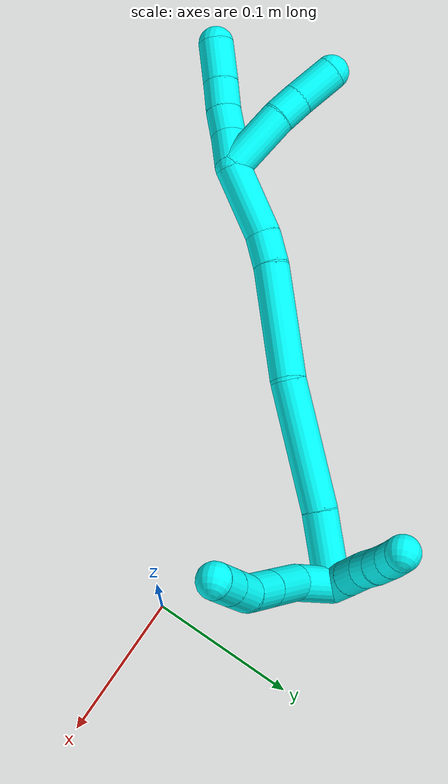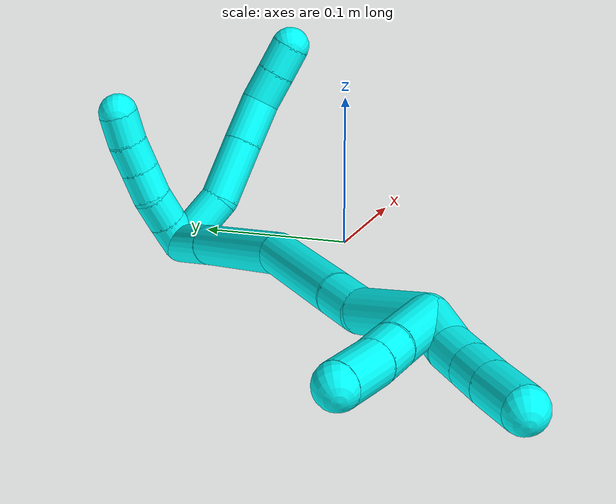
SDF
<sdf version="1.7">
 <world name="default">
  <model name="3">
   <static>0</static>
   <link name="3">
    <collision name="collision-cylinder-e_1_2_8">
     <pose>-0.003177 -0.016571 0.008357 1.10369 -0.169563 -0.104547</pose>
     <geometry><cylinder><radius>0.0125</radius><length>0.037658</length></cylinder></geometry>
     <surface>
      <friction><ode><mu>1.16</mu><mu2>1.16</mu2><slip1>0</slip1><slip2>0</slip2></ode></friction>
      <contact><ode><kp>1e+06</kp><kd>1</kd><max_vel>0</max_vel><min_depth>0.001</min_depth></ode></contact>
     </surface>
    </collision>
    <visual name="visual-cylinder-e_1_2_8">
     <pose>-0.003177 -0.016571 0.008357 1.10369 -0.169563 -0.104547</pose>
     <geometry><cylinder><radius>0.0125</radius><length>0.037658</length></cylinder></geometry>
     <material><ambient>0.003922 1 0.996078 1</ambient></material>
    </visual>
    <collision name="collision-cylinder-e_2_8_9">
     <pose>-0.014237 -0.047386 0.028766 0.86859 -0.399707 -0.187354</pose>
     <geometry><cylinder><radius>0.0125</radius><length>0.040511</length></cylinder></geometry>
     <surface>
      <friction><ode><mu>1.16</mu><mu2>1.16</mu2><slip1>0</slip1><slip2>0</slip2></ode></friction>
      <contact><ode><kp>1e+06</kp><kd>1</kd><max_vel>0</max_vel><min_depth>0.001</min_depth></ode></contact>
     </surface>
    </collision>
    <visual name="visual-cylinder-e_2_8_9">
     <pose>-0.014237 -0.047386 0.028766 0.86859 -0.399707 -0.187354</pose>
     <geometry><cylinder><radius>0.0125</radius><length>0.040511</length></cylinder></geometry>
     <material><ambient>0.003922 1 0.996078 1</ambient></material>
    </visual>
    <collision name="collision-cylinder-e_3_9_10">
     <pose>-0.027793 -0.072215 0.049713 0.871901 -0.389376 -0.183201</pose>
     <geometry><cylinder><radius>0.0125</radius><length>0.029888</length></cylinder></geometry>
     <surface>
      <friction><ode><mu>1.16</mu><mu2>1.16</mu2><slip1>0</slip1><slip2>0</slip2></ode></friction>
      <contact><ode><kp>1e+06</kp><kd>1</kd><max_vel>0</max_vel><min_depth>0.001</min_depth></ode></contact>
     </surface>
    </collision>
    <visual name="visual-cylinder-e_3_9_10">
     <pose>-0.027793 -0.072215 0.049713 0.871901 -0.389376 -0.183201</pose>
     <geometry><cylinder><radius>0.0125</radius><length>0.029888</length></cylinder></geometry>
     <material><ambient>0.003922 1 0.996078 1</ambient></material>
    </visual>
    <collision name="collision-cylinder-e_4_10_11">
     <pose>-0.038171 -0.091916 0.062212 1.19436 -0.447522 -0.307066</pose>
     <geometry><cylinder><radius>0.0125</radius><length>0.021749</length></cylinder></geometry>
     <surface>
      <friction><ode><mu>1.16</mu><mu2>1.16</mu2><slip1>0</slip1><slip2>0</slip2></ode></friction>
      <contact><ode><kp>1e+06</kp><kd>1</kd><max_vel>0</max_vel><min_depth>0.001</min_depth></ode></contact>
     </surface>
    </collision>
    <visual name="visual-cylinder-e_4_10_11">
     <pose>-0.038171 -0.091916 0.062212 1.19436 -0.447522 -0.307066</pose>
     <geometry><cylinder><radius>0.0125</radius><length>0.021749</length></cylinder></geometry>
     <material><ambient>0.003922 1 0.996078 1</ambient></material>
    </visual>
    <collision name="collision-cylinder-e_5_11_6">
     <pose>-0.047333 -0.109445 0.069184 1.18986 -0.457034 -0.31222</pose>
     <geometry><cylinder><radius>0.0125</radius><length>0.020193</length></cylinder></geometry>
     <surface>
      <friction><ode><mu>1.16</mu><mu2>1.16</mu2><slip1>0</slip1><slip2>0</slip2></ode></friction>
      <contact><ode><kp>1e+06</kp><kd>1</kd><max_vel>0</max_vel><min_depth>0.001</min_depth></ode></contact>
     </surface>
    </collision>
    <visual name="visual-cylinder-e_5_11_6">
     <pose>-0.047333 -0.109445 0.069184 1.18986 -0.457034 -0.31222</pose>
     <geometry><cylinder><radius>0.0125</radius><length>0.020193</length></cylinder></geometry>
     <material><ambient>0.003922 1 0.996078 1</ambient></material>
    </visual>
    <collision name="collision-cylinder-e_1_2_12">
     <pose>-0.009963 -0.000508 0.000693 0.632947 -1.4848 -0.583761</pose>
     <geometry><cylinder><radius>0.0125</radius><length>0.02</length></cylinder></geometry>
     <surface>
      <friction><ode><mu>1.16</mu><mu2>1.16</mu2><slip1>0</slip1><slip2>0</slip2></ode></friction>
      <contact><ode><kp>1e+06</kp><kd>1</kd><max_vel>0</max_vel><min_depth>0.001</min_depth></ode></contact>
     </surface>
    </collision>
    <visual name="visual-cylinder-e_1_2_12">
     <pose>-0.009963 -0.000508 0.000693 0.632947 -1.4848 -0.583761</pose>
     <geometry><cylinder><radius>0.0125</radius><length>0.02</length></cylinder></geometry>
     <material><ambient>0.003922 1 0.996078 1</ambient></material>
    </visual>
    <collision name="collision-cylinder-e_2_12_13">
     <pose>-0.029871 -0.001778 0.0021 0.817145 -1.46606 -0.743385</pose>
     <geometry><cylinder><radius>0.0125</radius><length>0.02</length></cylinder></geometry>
     <surface>
      <friction><ode><mu>1.16</mu><mu2>1.16</mu2><slip1>0</slip1><slip2>0</slip2></ode></friction>
      <contact><ode><kp>1e+06</kp><kd>1</kd><max_vel>0</max_vel><min_depth>0.001</min_depth></ode></contact>
     </surface>
    </collision>
    <visual name="visual-cylinder-e_2_12_13">
     <pose>-0.029871 -0.001778 0.0021 0.817145 -1.46606 -0.743385</pose>
     <geometry><cylinder><radius>0.0125</radius><length>0.02</length></cylinder></geometry>
     <material><ambient>0.003922 1 0.996078 1</ambient></material>
    </visual>
    <collision name="collision-cylinder-e_3_13_14">
     <pose>-0.049356 -0.004073 0.005395 0.536238 -1.26611 -0.397868</pose>
     <geometry><cylinder><radius>0.0125</radius><length>0.02</length></cylinder></geometry>
     <surface>
      <friction><ode><mu>1.16</mu><mu2>1.16</mu2><slip1>0</slip1><slip2>0</slip2></ode></friction>
      <contact><ode><kp>1e+06</kp><kd>1</kd><max_vel>0</max_vel><min_depth>0.001</min_depth></ode></contact>
     </surface>
    </collision>
    <visual name="visual-cylinder-e_3_13_14">
     <pose>-0.049356 -0.004073 0.005395 0.536238 -1.26611 -0.397868</pose>
     <geometry><cylinder><radius>0.0125</radius><length>0.02</length></cylinder></geometry>
     <material><ambient>0.003922 1 0.996078 1</ambient></material>
    </visual>
    <collision name="collision-cylinder-e_4_14_15">
     <pose>-0.068567 -0.007346 0.009826 0.754039 -1.31381 -0.59271</pose>
     <geometry><cylinder><radius>0.0125</radius><length>0.02</length></cylinder></geometry>
     <surface>
      <friction><ode><mu>1.16</mu><mu2>1.16</mu2><slip1>0</slip1><slip2>0</slip2></ode></friction>
      <contact><ode><kp>1e+06</kp><kd>1</kd><max_vel>0</max_vel><min_depth>0.001</min_depth></ode></contact>
     </surface>
    </collision>
    <visual name="visual-cylinder-e_4_14_15">
     <pose>-0.068567 -0.007346 0.009826 0.754039 -1.31381 -0.59271</pose>
     <geometry><cylinder><radius>0.0125</radius><length>0.02</length></cylinder></geometry>
     <material><ambient>0.003922 1 0.996078 1</ambient></material>
    </visual>
    <collision name="collision-cylinder-e_5_15_5">
     <pose>-0.087614 -0.01182 0.013829 0.904514 -1.2156 -0.651843</pose>
     <geometry><cylinder><radius>0.0125</radius><length>0.02</length></cylinder></geometry>
     <surface>
      <friction><ode><mu>1.16</mu><mu2>1.16</mu2><slip1>0</slip1><slip2>0</slip2></ode></friction>
      <contact><ode><kp>1e+06</kp><kd>1</kd><max_vel>0</max_vel><min_depth>0.001</min_depth></ode></contact>
     </surface>
    </collision>
    <visual name="visual-cylinder-e_5_15_5">
     <pose>-0.087614 -0.01182 0.013829 0.904514 -1.2156 -0.651843</pose>
     <geometry><cylinder><radius>0.0125</radius><length>0.02</length></cylinder></geometry>
     <material><ambient>0.003922 1 0.996078 1</ambient></material>
    </visual>
    <collision name="collision-cylinder-e_1_2_16">
     <pose>-0.006104 -0.014777 -0.01978 2.49996 -0.242375 -0.702586</pose>
     <geometry><cylinder><radius>0.0125</radius><length>0.050867</length></cylinder></geometry>
     <surface>
      <friction><ode><mu>1.16</mu><mu2>1.16</mu2><slip1>0</slip1><slip2>0</slip2></ode></friction>
      <contact><ode><kp>1e+06</kp><kd>1</kd><max_vel>0</max_vel><min_depth>0.001</min_depth></ode></contact>
     </surface>
    </collision>
    <visual name="visual-cylinder-e_1_2_16">
     <pose>-0.006104 -0.014777 -0.01978 2.49996 -0.242375 -0.702586</pose>
     <geometry><cylinder><radius>0.0125</radius><length>0.050867</length></cylinder></geometry>
     <material><ambient>0.003922 1 0.996078 1</ambient></material>
    </visual>
    <collision name="collision-cylinder-e_2_16_17">
     <pose>-0.020007 -0.057528 -0.074441 2.46565 -0.172676 -0.482934</pose>
     <geometry><cylinder><radius>0.0125</radius><length>0.090775</length></cylinder></geometry>
     <surface>
      <friction><ode><mu>1.16</mu><mu2>1.16</mu2><slip1>0</slip1><slip2>0</slip2></ode></friction>
      <contact><ode><kp>1e+06</kp><kd>1</kd><max_vel>0</max_vel><min_depth>0.001</min_depth></ode></contact>
     </surface>
    </collision>
    <visual name="visual-cylinder-e_2_16_17">
     <pose>-0.020007 -0.057528 -0.074441 2.46565 -0.172676 -0.482934</pose>
     <geometry><cylinder><radius>0.0125</radius><length>0.090775</length></cylinder></geometry>
     <material><ambient>0.003922 1 0.996078 1</ambient></material>
    </visual>
    <collision name="collision-cylinder-e_3_17_18">
     <pose>-0.030735 -0.103927 -0.145714 2.67291 -0.071706 -0.298261</pose>
     <geometry><cylinder><radius>0.0125</radius><length>0.081791</length></cylinder></geometry>
     <surface>
      <friction><ode><mu>1.16</mu><mu2>1.16</mu2><slip1>0</slip1><slip2>0</slip2></ode></friction>
      <contact><ode><kp>1e+06</kp><kd>1</kd><max_vel>0</max_vel><min_depth>0.001</min_depth></ode></contact>
     </surface>
    </collision>
    <visual name="visual-cylinder-e_3_17_18">
     <pose>-0.030735 -0.103927 -0.145714 2.67291 -0.071706 -0.298261</pose>
     <geometry><cylinder><radius>0.0125</radius><length>0.081791</length></cylinder></geometry>
     <material><ambient>0.003922 1 0.996078 1</ambient></material>
    </visual>
    <collision name="collision-cylinder-e_4_18_19">
     <pose>-0.03304 -0.128282 -0.192891 2.63896 0.050804 0.197274</pose>
     <geometry><cylinder><radius>0.0125</radius><length>0.024647</length></cylinder></geometry>
     <surface>
      <friction><ode><mu>1.16</mu><mu2>1.16</mu2><slip1>0</slip1><slip2>0</slip2></ode></friction>
      <contact><ode><kp>1e+06</kp><kd>1</kd><max_vel>0</max_vel><min_depth>0.001</min_depth></ode></contact>
     </surface>
    </collision>
    <visual name="visual-cylinder-e_4_18_19">
     <pose>-0.03304 -0.128282 -0.192891 2.63896 0.050804 0.197274</pose>
     <geometry><cylinder><radius>0.0125</radius><length>0.024647</length></cylinder></geometry>
     <material><ambient>0.003922 1 0.996078 1</ambient></material>
    </visual>
    <collision name="collision-cylinder-e_5_19_1">
     <pose>-0.033967 -0.153109 -0.221406 2.32431 -0.059858 -0.138055</pose>
     <geometry><cylinder><radius>0.0125</radius><length>0.051919</length></cylinder></geometry>
     <surface>
      <friction><ode><mu>1.16</mu><mu2>1.16</mu2><slip1>0</slip1><slip2>0</slip2></ode></friction>
      <contact><ode><kp>1e+06</kp><kd>1</kd><max_vel>0</max_vel><min_depth>0.001</min_depth></ode></contact>
     </surface>
    </collision>
    <visual name="visual-cylinder-e_5_19_1">
     <pose>-0.033967 -0.153109 -0.221406 2.32431 -0.059858 -0.138055</pose>
     <geometry><cylinder><radius>0.0125</radius><length>0.051919</length></cylinder></geometry>
     <material><ambient>0.003922 1 0.996078 1</ambient></material>
    </visual>
    <collision name="collision-cylinder-e_1_1_20">
     <pose>-0.033467 -0.175482 -0.251536 2.86841 0.158104 1.04568</pose>
     <geometry><cylinder><radius>0.0125</radius><length>0.026079</length></cylinder></geometry>
     <surface>
      <friction><ode><mu>1.16</mu><mu2>1.16</mu2><slip1>0</slip1><slip2>0</slip2></ode></friction>
      <contact><ode><kp>1e+06</kp><kd>1</kd><max_vel>0</max_vel><min_depth>0.001</min_depth></ode></contact>
     </surface>
    </collision>
    <visual name="visual-cylinder-e_1_1_20">
     <pose>-0.033467 -0.175482 -0.251536 2.86841 0.158104 1.04568</pose>
     <geometry><cylinder><radius>0.0125</radius><length>0.026079</length></cylinder></geometry>
     <material><ambient>0.003922 1 0.996078 1</ambient></material>
    </visual>
    <collision name="collision-cylinder-e_2_20_21">
     <pose>-0.030851 -0.183241 -0.273475 2.71944 0.053713 0.249441</pose>
     <geometry><cylinder><radius>0.0125</radius><length>0.020946</length></cylinder></geometry>
     <surface>
      <friction><ode><mu>1.16</mu><mu2>1.16</mu2><slip1>0</slip1><slip2>0</slip2></ode></friction>
      <contact><ode><kp>1e+06</kp><kd>1</kd><max_vel>0</max_vel><min_depth>0.001</min_depth></ode></contact>
     </surface>
    </collision>
    <visual name="visual-cylinder-e_2_20_21">
     <pose>-0.030851 -0.183241 -0.273475 2.71944 0.053713 0.249441</pose>
     <geometry><cylinder><radius>0.0125</radius><length>0.020946</length></cylinder></geometry>
     <material><ambient>0.003922 1 0.996078 1</ambient></material>
    </visual>
    <collision name="collision-cylinder-e_3_21_22">
     <pose>-0.030861 -0.191824 -0.293132 2.73985 -0.051991 -0.254018</pose>
     <geometry><cylinder><radius>0.0125</radius><length>0.022015</length></cylinder></geometry>
     <surface>
      <friction><ode><mu>1.16</mu><mu2>1.16</mu2><slip1>0</slip1><slip2>0</slip2></ode></friction>
      <contact><ode><kp>1e+06</kp><kd>1</kd><max_vel>0</max_vel><min_depth>0.001</min_depth></ode></contact>
     </surface>
    </collision>
    <visual name="visual-cylinder-e_3_21_22">
     <pose>-0.030861 -0.191824 -0.293132 2.73985 -0.051991 -0.254018</pose>
     <geometry><cylinder><radius>0.0125</radius><length>0.022015</length></cylinder></geometry>
     <material><ambient>0.003922 1 0.996078 1</ambient></material>
    </visual>
    <collision name="collision-cylinder-e_4_22_4">
     <pose>-0.032368 -0.202589 -0.317283 2.70979 -0.060452 -0.273991</pose>
     <geometry><cylinder><radius>0.0125</radius><length>0.030959</length></cylinder></geometry>
     <surface>
      <friction><ode><mu>1.16</mu><mu2>1.16</mu2><slip1>0</slip1><slip2>0</slip2></ode></friction>
      <contact><ode><kp>1e+06</kp><kd>1</kd><max_vel>0</max_vel><min_depth>0.001</min_depth></ode></contact>
     </surface>
    </collision>
    <visual name="visual-cylinder-e_4_22_4">
     <pose>-0.032368 -0.202589 -0.317283 2.70979 -0.060452 -0.273991</pose>
     <geometry><cylinder><radius>0.0125</radius><length>0.030959</length></cylinder></geometry>
     <material><ambient>0.003922 1 0.996078 1</ambient></material>
    </visual>
    <collision name="collision-cylinder-e_1_1_23">
     <pose>-0.047398 -0.16589 -0.259159 -2.84507 -0.516071 2.11162</pose>
     <geometry><cylinder><radius>0.0125</radius><length>0.048144</length></cylinder></geometry>
     <surface>
      <friction><ode><mu>1.16</mu><mu2>1.16</mu2><slip1>0</slip1><slip2>0</slip2></ode></friction>
      <contact><ode><kp>1e+06</kp><kd>1</kd><max_vel>0</max_vel><min_depth>0.001</min_depth></ode></contact>
     </surface>
    </collision>
    <visual name="visual-cylinder-e_1_1_23">
     <pose>-0.047398 -0.16589 -0.259159 -2.84507 -0.516071 2.11162</pose>
     <geometry><cylinder><radius>0.0125</radius><length>0.048144</length></cylinder></geometry>
     <material><ambient>0.003922 1 0.996078 1</ambient></material>
    </visual>
    <collision name="collision-cylinder-e_2_23_24">
     <pose>-0.063731 -0.156149 -0.287469 -2.72943 -0.457648 1.67865</pose>
     <geometry><cylinder><radius>0.0125</radius><length>0.020162</length></cylinder></geometry>
     <surface>
      <friction><ode><mu>1.16</mu><mu2>1.16</mu2><slip1>0</slip1><slip2>0</slip2></ode></friction>
      <contact><ode><kp>1e+06</kp><kd>1</kd><max_vel>0</max_vel><min_depth>0.001</min_depth></ode></contact>
     </surface>
    </collision>
    <visual name="visual-cylinder-e_2_23_24">
     <pose>-0.063731 -0.156149 -0.287469 -2.72943 -0.457648 1.67865</pose>
     <geometry><cylinder><radius>0.0125</radius><length>0.020162</length></cylinder></geometry>
     <material><ambient>0.003922 1 0.996078 1</ambient></material>
    </visual>
    <collision name="collision-cylinder-e_3_24_3">
     <pose>-0.076172 -0.146559 -0.308073 -2.69045 -0.528206 1.73423</pose>
     <geometry><cylinder><radius>0.0125</radius><length>0.031693</length></cylinder></geometry>
     <surface>
      <friction><ode><mu>1.16</mu><mu2>1.16</mu2><slip1>0</slip1><slip2>0</slip2></ode></friction>
      <contact><ode><kp>1e+06</kp><kd>1</kd><max_vel>0</max_vel><min_depth>0.001</min_depth></ode></contact>
     </surface>
    </collision>
    <visual name="visual-cylinder-e_3_24_3">
     <pose>-0.076172 -0.146559 -0.308073 -2.69045 -0.528206 1.73423</pose>
     <geometry><cylinder><radius>0.0125</radius><length>0.031693</length></cylinder></geometry>
     <material><ambient>0.003922 1 0.996078 1</ambient></material>
    </visual>
    <collision name="collision-sphere-3">
     <pose>-0.084159 -0.140591 -0.320391 0 -0 0</pose>
     <geometry><sphere><radius>0.0125</radius></sphere></geometry>
     <surface>
      <friction><ode><mu>1.16</mu><mu2>1.16</mu2><slip1>0</slip1><slip2>0</slip2></ode></friction>
      <contact><ode><kp>1e+06</kp><kd>1</kd><max_vel>0</max_vel><min_depth>0.001</min_depth></ode></contact>
     </surface>
    </collision>
    <visual name="visual-sphere-3">
     <pose>-0.084159 -0.140591 -0.320391 0 -0 0</pose>
     <geometry><sphere><radius>0.0125</radius></sphere></geometry>
     <material><ambient>0.003922 1 0.996078 1</ambient></material>
    </visual>
    <collision name="collision-sphere-24">
     <pose>-0.068186 -0.152526 -0.295756 0 -0 0</pose>
     <geometry><sphere><radius>0.0125</radius></sphere></geometry>
     <surface>
      <friction><ode><mu>1.16</mu><mu2>1.16</mu2><slip1>0</slip1><slip2>0</slip2></ode></friction>
      <contact><ode><kp>1e+06</kp><kd>1</kd><max_vel>0</max_vel><min_depth>0.001</min_depth></ode></contact>
     </surface>
    </collision>
    <visual name="visual-sphere-24">
     <pose>-0.068186 -0.152526 -0.295756 0 -0 0</pose>
     <geometry><sphere><radius>0.0125</radius></sphere></geometry>
     <material><ambient>0.003922 1 0.996078 1</ambient></material>
    </visual>
    <collision name="collision-sphere-23">
     <pose>-0.059277 -0.159772 -0.279183 0 -0 0</pose>
     <geometry><sphere><radius>0.0125</radius></sphere></geometry>
     <surface>
      <friction><ode><mu>1.16</mu><mu2>1.16</mu2><slip1>0</slip1><slip2>0</slip2></ode></friction>
      <contact><ode><kp>1e+06</kp><kd>1</kd><max_vel>0</max_vel><min_depth>0.001</min_depth></ode></contact>
     </surface>
    </collision>
    <visual name="visual-sphere-23">
     <pose>-0.059277 -0.159772 -0.279183 0 -0 0</pose>
     <geometry><sphere><radius>0.0125</radius></sphere></geometry>
     <material><ambient>0.003922 1 0.996078 1</ambient></material>
    </visual>
    <collision name="collision-sphere-4">
     <pose>-0.033304 -0.209056 -0.331316 0 -0 0</pose>
     <geometry><sphere><radius>0.0125</radius></sphere></geometry>
     <surface>
      <friction><ode><mu>1.16</mu><mu2>1.16</mu2><slip1>0</slip1><slip2>0</slip2></ode></friction>
      <contact><ode><kp>1e+06</kp><kd>1</kd><max_vel>0</max_vel><min_depth>0.001</min_depth></ode></contact>
     </surface>
    </collision>
    <visual name="visual-sphere-4">
     <pose>-0.033304 -0.209056 -0.331316 0 -0 0</pose>
     <geometry><sphere><radius>0.0125</radius></sphere></geometry>
     <material><ambient>0.003922 1 0.996078 1</ambient></material>
    </visual>
    <collision name="collision-sphere-22">
     <pose>-0.031433 -0.196122 -0.30325 0 -0 0</pose>
     <geometry><sphere><radius>0.0125</radius></sphere></geometry>
     <surface>
      <friction><ode><mu>1.16</mu><mu2>1.16</mu2><slip1>0</slip1><slip2>0</slip2></ode></friction>
      <contact><ode><kp>1e+06</kp><kd>1</kd><max_vel>0</max_vel><min_depth>0.001</min_depth></ode></contact>
     </surface>
    </collision>
    <visual name="visual-sphere-22">
     <pose>-0.031433 -0.196122 -0.30325 0 -0 0</pose>
     <geometry><sphere><radius>0.0125</radius></sphere></geometry>
     <material><ambient>0.003922 1 0.996078 1</ambient></material>
    </visual>
    <collision name="collision-sphere-21">
     <pose>-0.030289 -0.187526 -0.283015 0 -0 0</pose>
     <geometry><sphere><radius>0.0125</radius></sphere></geometry>
     <surface>
      <friction><ode><mu>1.16</mu><mu2>1.16</mu2><slip1>0</slip1><slip2>0</slip2></ode></friction>
      <contact><ode><kp>1e+06</kp><kd>1</kd><max_vel>0</max_vel><min_depth>0.001</min_depth></ode></contact>
     </surface>
    </collision>
    <visual name="visual-sphere-21">
     <pose>-0.030289 -0.187526 -0.283015 0 -0 0</pose>
     <geometry><sphere><radius>0.0125</radius></sphere></geometry>
     <material><ambient>0.003922 1 0.996078 1</ambient></material>
    </visual>
    <collision name="collision-sphere-20">
     <pose>-0.031414 -0.178956 -0.263935 0 -0 0</pose>
     <geometry><sphere><radius>0.0125</radius></sphere></geometry>
     <surface>
      <friction><ode><mu>1.16</mu><mu2>1.16</mu2><slip1>0</slip1><slip2>0</slip2></ode></friction>
      <contact><ode><kp>1e+06</kp><kd>1</kd><max_vel>0</max_vel><min_depth>0.001</min_depth></ode></contact>
     </surface>
    </collision>
    <visual name="visual-sphere-20">
     <pose>-0.031414 -0.178956 -0.263935 0 -0 0</pose>
     <geometry><sphere><radius>0.0125</radius></sphere></geometry>
     <material><ambient>0.003922 1 0.996078 1</ambient></material>
    </visual>
    <collision name="collision-sphere-6">
     <pose>-0.051788 -0.117856 0.072553 0 -0 0</pose>
     <geometry><sphere><radius>0.0125</radius></sphere></geometry>
     <surface>
      <friction><ode><mu>1.16</mu><mu2>1.16</mu2><slip1>0</slip1><slip2>0</slip2></ode></friction>
      <contact><ode><kp>1e+06</kp><kd>1</kd><max_vel>0</max_vel><min_depth>0.001</min_depth></ode></contact>
     </surface>
    </collision>
    <visual name="visual-sphere-6">
     <pose>-0.051788 -0.117856 0.072553 0 -0 0</pose>
     <geometry><sphere><radius>0.0125</radius></sphere></geometry>
     <material><ambient>0.003922 1 0.996078 1</ambient></material>
    </visual>
    <collision name="collision-sphere-11">
     <pose>-0.042877 -0.101034 0.065816 0 -0 0</pose>
     <geometry><sphere><radius>0.0125</radius></sphere></geometry>
     <surface>
      <friction><ode><mu>1.16</mu><mu2>1.16</mu2><slip1>0</slip1><slip2>0</slip2></ode></friction>
      <contact><ode><kp>1e+06</kp><kd>1</kd><max_vel>0</max_vel><min_depth>0.001</min_depth></ode></contact>
     </surface>
    </collision>
    <visual name="visual-sphere-11">
     <pose>-0.042877 -0.101034 0.065816 0 -0 0</pose>
     <geometry><sphere><radius>0.0125</radius></sphere></geometry>
     <material><ambient>0.003922 1 0.996078 1</ambient></material>
    </visual>
    <collision name="collision-sphere-10">
     <pose>-0.033466 -0.082799 0.058608 0 -0 0</pose>
     <geometry><sphere><radius>0.0125</radius></sphere></geometry>
     <surface>
      <friction><ode><mu>1.16</mu><mu2>1.16</mu2><slip1>0</slip1><slip2>0</slip2></ode></friction>
      <contact><ode><kp>1e+06</kp><kd>1</kd><max_vel>0</max_vel><min_depth>0.001</min_depth></ode></contact>
     </surface>
    </collision>
    <visual name="visual-sphere-10">
     <pose>-0.033466 -0.082799 0.058608 0 -0 0</pose>
     <geometry><sphere><radius>0.0125</radius></sphere></geometry>
     <material><ambient>0.003922 1 0.996078 1</ambient></material>
    </visual>
    <collision name="collision-sphere-9">
     <pose>-0.02212 -0.061631 0.040818 0 -0 0</pose>
     <geometry><sphere><radius>0.0125</radius></sphere></geometry>
     <surface>
      <friction><ode><mu>1.16</mu><mu2>1.16</mu2><slip1>0</slip1><slip2>0</slip2></ode></friction>
      <contact><ode><kp>1e+06</kp><kd>1</kd><max_vel>0</max_vel><min_depth>0.001</min_depth></ode></contact>
     </surface>
    </collision>
    <visual name="visual-sphere-9">
     <pose>-0.02212 -0.061631 0.040818 0 -0 0</pose>
     <geometry><sphere><radius>0.0125</radius></sphere></geometry>
     <material><ambient>0.003922 1 0.996078 1</ambient></material>
    </visual>
    <collision name="collision-sphere-2">
     <geometry><sphere><radius>0.0125</radius></sphere></geometry>
     <surface>
      <friction><ode><mu>1.16</mu><mu2>1.16</mu2><slip1>0</slip1><slip2>0</slip2></ode></friction>
      <contact><ode><kp>1e+06</kp><kd>1</kd><max_vel>0</max_vel><min_depth>0.001</min_depth></ode></contact>
     </surface>
    </collision>
    <visual name="visual-sphere-2">
     <geometry><sphere><radius>0.0125</radius></sphere></geometry>
     <material><ambient>0.003922 1 0.996078 1</ambient></material>
    </visual>
    <collision name="collision-sphere-19">
     <pose>-0.032414 -0.134211 -0.203676 0 -0 0</pose>
     <geometry><sphere><radius>0.0125</radius></sphere></geometry>
     <surface>
      <friction><ode><mu>1.16</mu><mu2>1.16</mu2><slip1>0</slip1><slip2>0</slip2></ode></friction>
      <contact><ode><kp>1e+06</kp><kd>1</kd><max_vel>0</max_vel><min_depth>0.001</min_depth></ode></contact>
     </surface>
    </collision>
    <visual name="visual-sphere-19">
     <pose>-0.032414 -0.134211 -0.203676 0 -0 0</pose>
     <geometry><sphere><radius>0.0125</radius></sphere></geometry>
     <material><ambient>0.003922 1 0.996078 1</ambient></material>
    </visual>
    <collision name="collision-sphere-8">
     <pose>-0.006355 -0.033141 0.016714 0 -0 0</pose>
     <geometry><sphere><radius>0.0125</radius></sphere></geometry>
     <surface>
      <friction><ode><mu>1.16</mu><mu2>1.16</mu2><slip1>0</slip1><slip2>0</slip2></ode></friction>
      <contact><ode><kp>1e+06</kp><kd>1</kd><max_vel>0</max_vel><min_depth>0.001</min_depth></ode></contact>
     </surface>
    </collision>
    <visual name="visual-sphere-8">
     <pose>-0.006355 -0.033141 0.016714 0 -0 0</pose>
     <geometry><sphere><radius>0.0125</radius></sphere></geometry>
     <material><ambient>0.003922 1 0.996078 1</ambient></material>
    </visual>
    <collision name="collision-sphere-12">
     <pose>-0.019926 -0.001016 0.001385 0 -0 0</pose>
     <geometry><sphere><radius>0.0125</radius></sphere></geometry>
     <surface>
      <friction><ode><mu>1.16</mu><mu2>1.16</mu2><slip1>0</slip1><slip2>0</slip2></ode></friction>
      <contact><ode><kp>1e+06</kp><kd>1</kd><max_vel>0</max_vel><min_depth>0.001</min_depth></ode></contact>
     </surface>
    </collision>
    <visual name="visual-sphere-12">
     <pose>-0.019926 -0.001016 0.001385 0 -0 0</pose>
     <geometry><sphere><radius>0.0125</radius></sphere></geometry>
     <material><ambient>0.003922 1 0.996078 1</ambient></material>
    </visual>
    <collision name="collision-sphere-13">
     <pose>-0.039816 -0.002541 0.002816 0 -0 0</pose>
     <geometry><sphere><radius>0.0125</radius></sphere></geometry>
     <surface>
      <friction><ode><mu>1.16</mu><mu2>1.16</mu2><slip1>0</slip1><slip2>0</slip2></ode></friction>
      <contact><ode><kp>1e+06</kp><kd>1</kd><max_vel>0</max_vel><min_depth>0.001</min_depth></ode></contact>
     </surface>
    </collision>
    <visual name="visual-sphere-13">
     <pose>-0.039816 -0.002541 0.002816 0 -0 0</pose>
     <geometry><sphere><radius>0.0125</radius></sphere></geometry>
     <material><ambient>0.003922 1 0.996078 1</ambient></material>
    </visual>
    <collision name="collision-sphere-14">
     <pose>-0.058895 -0.005606 0.007974 0 -0 0</pose>
     <geometry><sphere><radius>0.0125</radius></sphere></geometry>
     <surface>
      <friction><ode><mu>1.16</mu><mu2>1.16</mu2><slip1>0</slip1><slip2>0</slip2></ode></friction>
      <contact><ode><kp>1e+06</kp><kd>1</kd><max_vel>0</max_vel><min_depth>0.001</min_depth></ode></contact>
     </surface>
    </collision>
    <visual name="visual-sphere-14">
     <pose>-0.058895 -0.005606 0.007974 0 -0 0</pose>
     <geometry><sphere><radius>0.0125</radius></sphere></geometry>
     <material><ambient>0.003922 1 0.996078 1</ambient></material>
    </visual>
    <collision name="collision-sphere-15">
     <pose>-0.078238 -0.009086 0.011679 0 -0 0</pose>
     <geometry><sphere><radius>0.0125</radius></sphere></geometry>
     <surface>
      <friction><ode><mu>1.16</mu><mu2>1.16</mu2><slip1>0</slip1><slip2>0</slip2></ode></friction>
      <contact><ode><kp>1e+06</kp><kd>1</kd><max_vel>0</max_vel><min_depth>0.001</min_depth></ode></contact>
     </surface>
    </collision>
    <visual name="visual-sphere-15">
     <pose>-0.078238 -0.009086 0.011679 0 -0 0</pose>
     <geometry><sphere><radius>0.0125</radius></sphere></geometry>
     <material><ambient>0.003922 1 0.996078 1</ambient></material>
    </visual>
    <collision name="collision-sphere-5">
     <pose>-0.09699 -0.014554 0.015978 0 -0 0</pose>
     <geometry><sphere><radius>0.0125</radius></sphere></geometry>
     <surface>
      <friction><ode><mu>1.16</mu><mu2>1.16</mu2><slip1>0</slip1><slip2>0</slip2></ode></friction>
      <contact><ode><kp>1e+06</kp><kd>1</kd><max_vel>0</max_vel><min_depth>0.001</min_depth></ode></contact>
     </surface>
    </collision>
    <visual name="visual-sphere-5">
     <pose>-0.09699 -0.014554 0.015978 0 -0 0</pose>
     <geometry><sphere><radius>0.0125</radius></sphere></geometry>
     <material><ambient>0.003922 1 0.996078 1</ambient></material>
    </visual>
    <collision name="collision-sphere-16">
     <pose>-0.012209 -0.029554 -0.03956 0 -0 0</pose>
     <geometry><sphere><radius>0.0125</radius></sphere></geometry>
     <surface>
      <friction><ode><mu>1.16</mu><mu2>1.16</mu2><slip1>0</slip1><slip2>0</slip2></ode></friction>
      <contact><ode><kp>1e+06</kp><kd>1</kd><max_vel>0</max_vel><min_depth>0.001</min_depth></ode></contact>
     </surface>
    </collision>
    <visual name="visual-sphere-16">
     <pose>-0.012209 -0.029554 -0.03956 0 -0 0</pose>
     <geometry><sphere><radius>0.0125</radius></sphere></geometry>
     <material><ambient>0.003922 1 0.996078 1</ambient></material>
    </visual>
    <collision name="collision-sphere-17">
     <pose>-0.027805 -0.085501 -0.109322 0 -0 0</pose>
     <geometry><sphere><radius>0.0125</radius></sphere></geometry>
     <surface>
      <friction><ode><mu>1.16</mu><mu2>1.16</mu2><slip1>0</slip1><slip2>0</slip2></ode></friction>
      <contact><ode><kp>1e+06</kp><kd>1</kd><max_vel>0</max_vel><min_depth>0.001</min_depth></ode></contact>
     </surface>
    </collision>
    <visual name="visual-sphere-17">
     <pose>-0.027805 -0.085501 -0.109322 0 -0 0</pose>
     <geometry><sphere><radius>0.0125</radius></sphere></geometry>
     <material><ambient>0.003922 1 0.996078 1</ambient></material>
    </visual>
    <collision name="collision-sphere-18">
     <pose>-0.033665 -0.122353 -0.182105 0 -0 0</pose>
     <geometry><sphere><radius>0.0125</radius></sphere></geometry>
     <surface>
      <friction><ode><mu>1.16</mu><mu2>1.16</mu2><slip1>0</slip1><slip2>0</slip2></ode></friction>
      <contact><ode><kp>1e+06</kp><kd>1</kd><max_vel>0</max_vel><min_depth>0.001</min_depth></ode></contact>
     </surface>
    </collision>
    <visual name="visual-sphere-18">
     <pose>-0.033665 -0.122353 -0.182105 0 -0 0</pose>
     <geometry><sphere><radius>0.0125</radius></sphere></geometry>
     <material><ambient>0.003922 1 0.996078 1</ambient></material>
    </visual>
    <collision name="collision-sphere-1">
     <pose>-0.03552 -0.172007 -0.239136 0 -0 0</pose>
     <geometry><sphere><radius>0.0125</radius></sphere></geometry>
     <surface>
      <friction><ode><mu>1.16</mu><mu2>1.16</mu2><slip1>0</slip1><slip2>0</slip2></ode></friction>
      <contact><ode><kp>1e+06</kp><kd>1</kd><max_vel>0</max_vel><min_depth>0.001</min_depth></ode></contact>
     </surface>
    </collision>
    <visual name="visual-sphere-1">
     <pose>-0.03552 -0.172007 -0.239136 0 -0 0</pose>
     <geometry><sphere><radius>0.0125</radius></sphere></geometry>
     <material><ambient>0.003922 1 0.996078 1</ambient></material>
    </visual>
    <inertial>
     <pose>-0.032827 -0.092929 -0.114906 0 -0 0</pose>
     <mass>0.75</mass>
     <inertia>
      <ixx>8.9e-05</ixx>
      <ixy>0</ixy>
      <ixz>0</ixz>
      <iyy>-0.000149</iyy>
      <iyz>0</iyz>
      <izz>0.000111</izz>
     </inertia>
    </inertial>
   </link>
   <pose>-0.07601 0.087482 0.011493 -0.975609 0.925868 -0.686998</pose>
  </model>
 </world>
</sdf>
